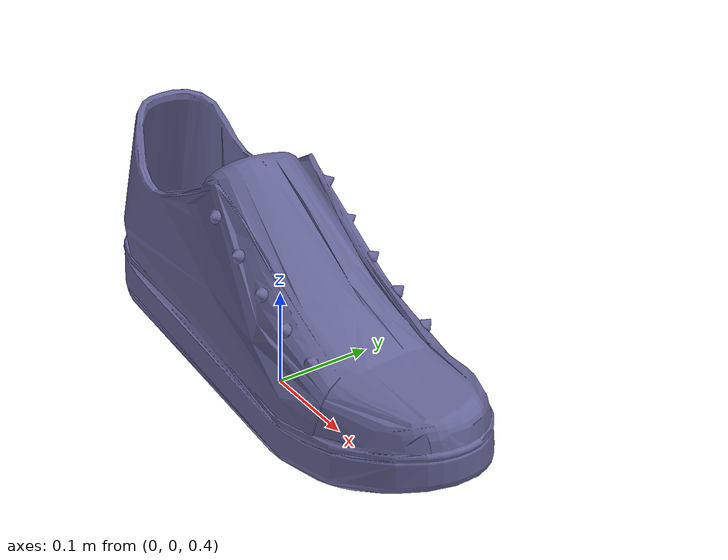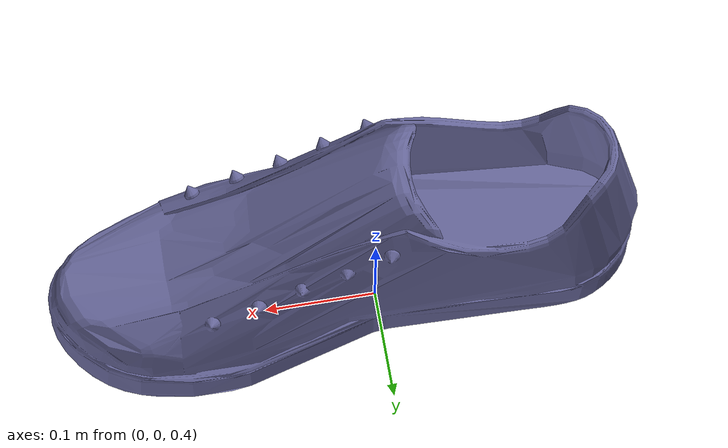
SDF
<sdf version='1.6'>
	<model name='shoe_lace'>
    <link name="shoe_lace">
      <pose> 0.0 0 0.50 1.57079 0 1.57079</pose>
      <inertial>
        <pose frame=''>0 0 0 0 0 0</pose>
        <mass>10</mass>
        <inertia>
          <ixx>1</ixx>
          <ixy>0</ixy>
          <ixz>0</ixz>
          <iyy>1</iyy>
          <iyz>0</iyz>
          <izz>1</izz>
        </inertia>
      </inertial>
      <visual name='cylinder'>
        <pose frame=''> 0.0 -0.075 -0.05 -1.5708 0 0 </pose>
        <geometry>
          <mesh>
	    <scale>0.01 0.01 0.01</scale>
	    <uri>meshes/model_simplified.stl</uri>
	  </mesh>
        </geometry>
        <material>
          <diffuse>0.4 0.4 0.6 1.0</diffuse>
        </material>
      </visual>

      <collision name='cylinder'>
        <pose frame=''> 0 0 0 0 0 0 </pose>
        <geometry>
          <cylinder>
          <radius>0.1</radius>
          <length>0.5</length>
          </cylinder>
        </geometry>

        <surface>
          <friction>
          <ode>
            <mu>0.3</mu>
            <mu2>0.3</mu2>
          </ode>
          </friction>
        </surface>
      </collision>

      <!-- TODO: Put collision here -->
    </link>
    <joint name="base_weld" type="fixed">
      <child>shoe_lace</child>
      <parent>world</parent>
    </joint>

  </model>

</sdf>
